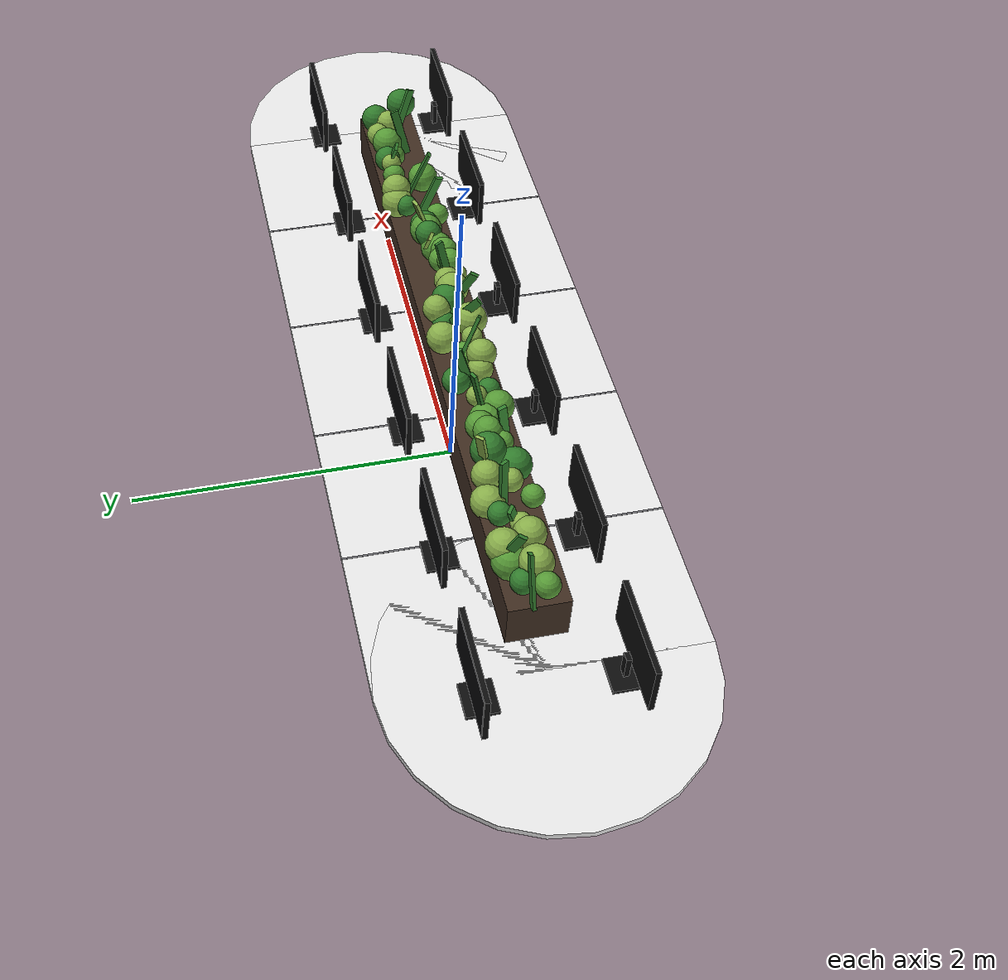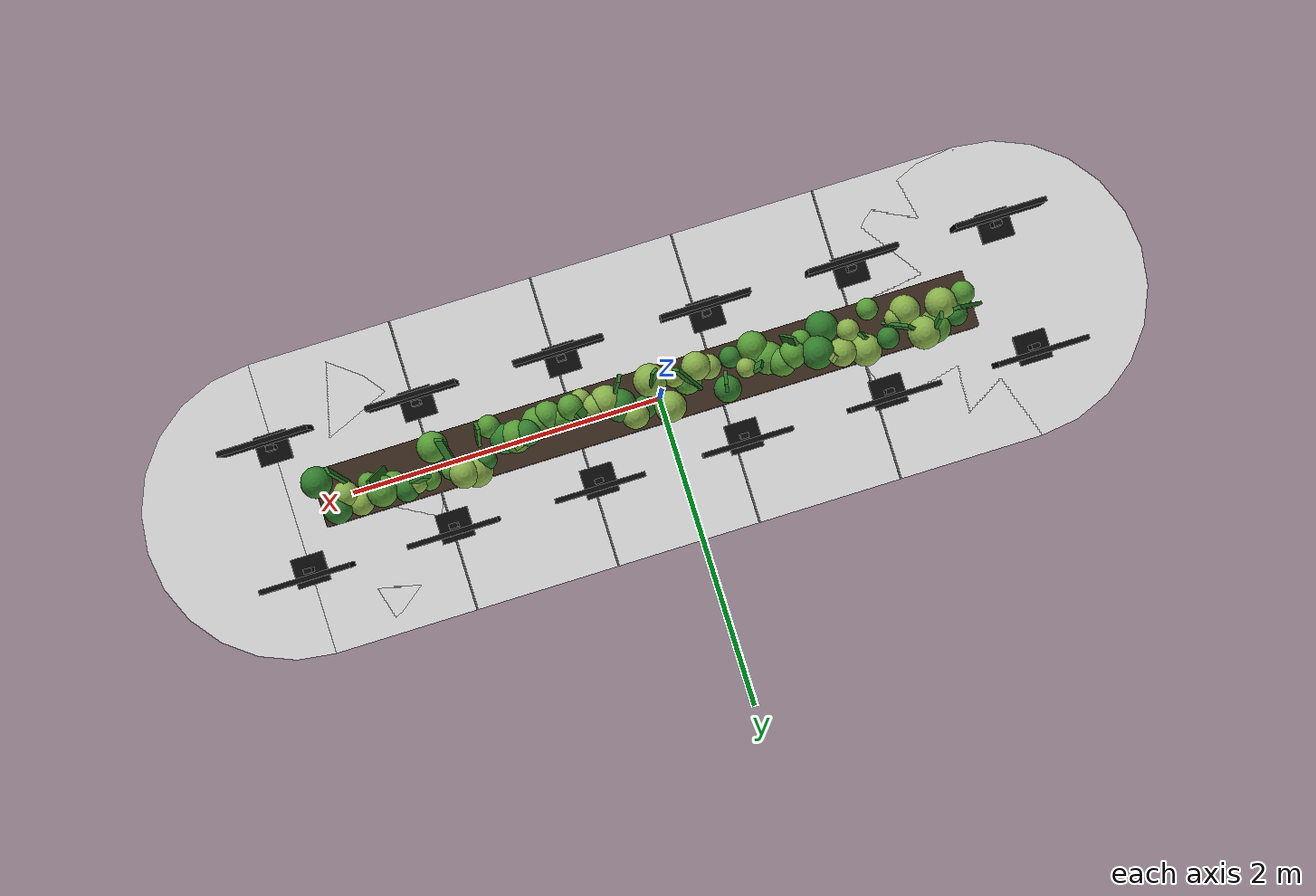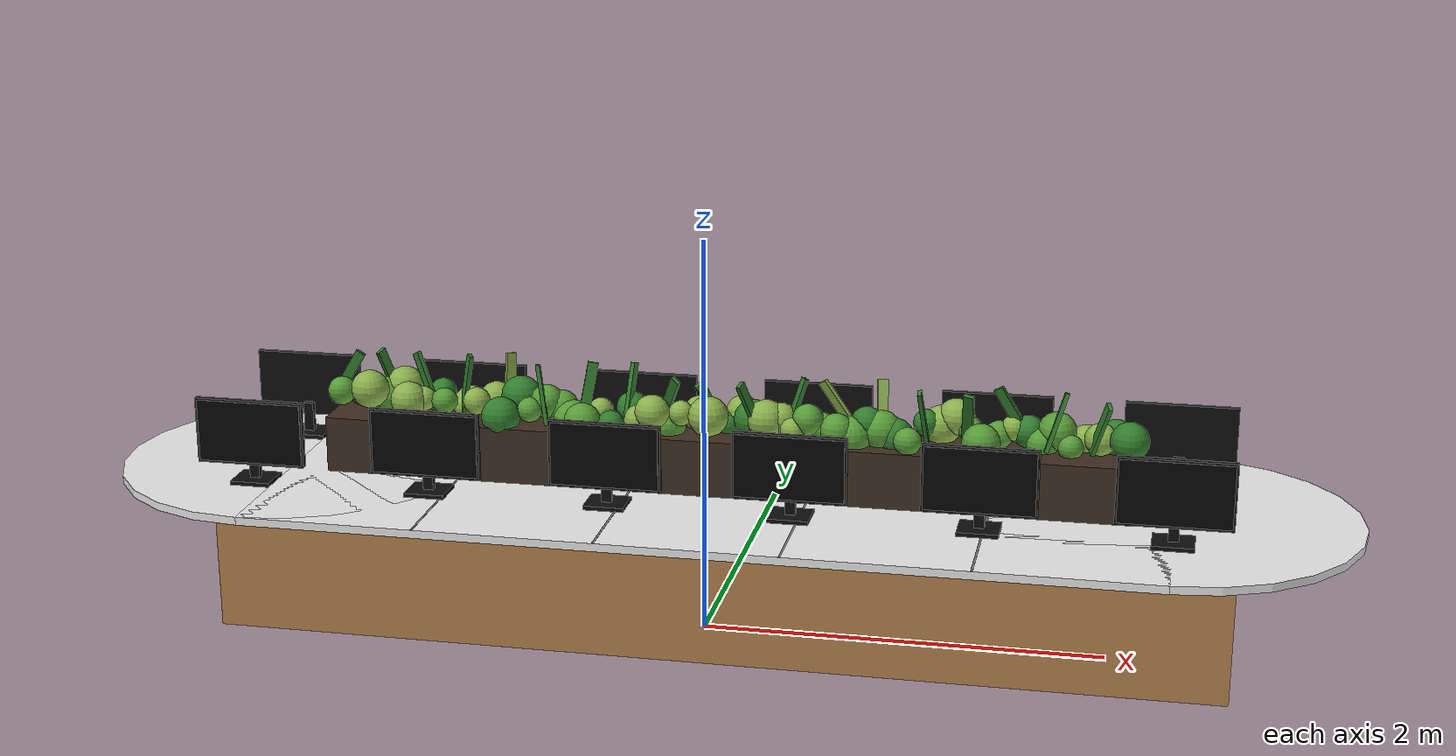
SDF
<sdf version="1.6">
 <world name="mahadev_lab">
  <include><uri>model://sun</uri></include>
  <model name="conference_table">
   <static>true</static>
   <pose>0.1000 0.0000 0.0000 0.0000 0.0000 0.0000</pose>
   <link name="link">
    <visual name="v1">
     <pose>0.0000 0.0000 0.7400 0.0000 0.0000 0.0000</pose>
     <geometry><box><size>4.4 1.8 0.04</size></box></geometry>
     <material>
      <ambient>0.92 0.92 0.92 1</ambient>
      <diffuse>0.92 0.92 0.92 1</diffuse>
      <specular>0.1 0.1 0.1 1</specular>
     </material>
    </visual>
    <collision name="c1">
     <pose>0.0000 0.0000 0.7400 0.0000 0.0000 0.0000</pose>
     <geometry><box><size>4.4 1.8 0.04</size></box></geometry>
     <surface><friction><ode><mu>100</mu><mu2>100</mu2></ode></friction></surface>
    </collision>
    <visual name="v2">
     <pose>-2.2000 0.0000 0.7400 0.0000 0.0000 0.0000</pose>
     <geometry><cylinder><radius>0.9</radius><length>0.04</length></cylinder></geometry>
     <material>
      <ambient>0.92 0.92 0.92 1</ambient>
      <diffuse>0.92 0.92 0.92 1</diffuse>
      <specular>0.1 0.1 0.1 1</specular>
     </material>
    </visual>
    <collision name="c2">
     <pose>-2.2000 0.0000 0.7400 0.0000 0.0000 0.0000</pose>
     <geometry><cylinder><radius>0.9</radius><length>0.04</length></cylinder></geometry>
     <surface><friction><ode><mu>100</mu><mu2>100</mu2></ode></friction></surface>
    </collision>
    <visual name="v3">
     <pose>2.2000 0.0000 0.7400 0.0000 0.0000 0.0000</pose>
     <geometry><cylinder><radius>0.9</radius><length>0.04</length></cylinder></geometry>
     <material>
      <ambient>0.92 0.92 0.92 1</ambient>
      <diffuse>0.92 0.92 0.92 1</diffuse>
      <specular>0.1 0.1 0.1 1</specular>
     </material>
    </visual>
    <collision name="c3">
     <pose>2.2000 0.0000 0.7400 0.0000 0.0000 0.0000</pose>
     <geometry><cylinder><radius>0.9</radius><length>0.04</length></cylinder></geometry>
     <surface><friction><ode><mu>100</mu><mu2>100</mu2></ode></friction></surface>
    </collision>
    <visual name="v4">
     <pose>-1.3200 0.0000 0.7610 0.0000 0.0000 0.0000</pose>
     <geometry><box><size>0.01 1.8 0.002</size></box></geometry>
     <material>
      <ambient>0.45 0.45 0.47 1</ambient>
      <diffuse>0.45 0.45 0.47 1</diffuse>
      <specular>0.1 0.1 0.1 1</specular>
     </material>
    </visual>
    <visual name="v5">
     <pose>-0.4400 0.0000 0.7610 0.0000 0.0000 0.0000</pose>
     <geometry><box><size>0.01 1.8 0.002</size></box></geometry>
     <material>
      <ambient>0.45 0.45 0.47 1</ambient>
      <diffuse>0.45 0.45 0.47 1</diffuse>
      <specular>0.1 0.1 0.1 1</specular>
     </material>
    </visual>
    <visual name="v6">
     <pose>0.4400 0.0000 0.7610 0.0000 0.0000 0.0000</pose>
     <geometry><box><size>0.01 1.8 0.002</size></box></geometry>
     <material>
      <ambient>0.45 0.45 0.47 1</ambient>
      <diffuse>0.45 0.45 0.47 1</diffuse>
      <specular>0.1 0.1 0.1 1</specular>
     </material>
    </visual>
    <visual name="v7">
     <pose>1.3200 0.0000 0.7610 0.0000 0.0000 0.0000</pose>
     <geometry><box><size>0.01 1.8 0.002</size></box></geometry>
     <material>
      <ambient>0.45 0.45 0.47 1</ambient>
      <diffuse>0.45 0.45 0.47 1</diffuse>
      <specular>0.1 0.1 0.1 1</specular>
     </material>
    </visual>
    <visual name="v8">
     <pose>0.0000 0.0000 0.3600 0.0000 0.0000 0.0000</pose>
     <geometry><box><size>5 0.9 0.72</size></box></geometry>
     <material>
      <script>
       <uri>model://mahadev_lab_media/materials/scripts</uri>
       <uri>model://mahadev_lab_media/materials/textures</uri>
       <name>Mahadev/wood_light_4_1</name>
      </script>
     </material>
    </visual>
    <collision name="c8">
     <pose>0.0000 0.0000 0.3600 0.0000 0.0000 0.0000</pose>
     <geometry><box><size>5 0.9 0.72</size></box></geometry>
     <surface><friction><ode><mu>100</mu><mu2>100</mu2></ode></friction></surface>
    </collision>
    <visual name="v9">
     <pose>0.0000 0.0000 0.9000 0.0000 0.0000 0.0000</pose>
     <geometry><box><size>4 0.34 0.28</size></box></geometry>
     <material>
      <ambient>0.25 0.18 0.13 1</ambient>
      <diffuse>0.25 0.18 0.13 1</diffuse>
      <specular>0.1 0.1 0.1 1</specular>
     </material>
    </visual>
    <visual name="v10">
     <pose>-1.9500 -0.0424 1.1473 0.0000 0.0000 0.0000</pose>
     <geometry><sphere><radius>0.0711403</radius></sphere></geometry>
     <material>
      <ambient>0.35 0.62 0.22 1</ambient>
      <diffuse>0.35 0.62 0.22 1</diffuse>
      <specular>0.1 0.1 0.1 1</specular>
     </material>
    </visual>
    <visual name="v11">
     <pose>-1.9500 0.0422 1.2000 0.5493 -0.0377 1.5746</pose>
     <geometry><box><size>0.02 0.05 0.3</size></box></geometry>
     <material>
      <ambient>0.2 0.5 0.18 1</ambient>
      <diffuse>0.2 0.5 0.18 1</diffuse>
      <specular>0.1 0.1 0.1 1</specular>
     </material>
    </visual>
    <visual name="v12">
     <pose>-1.8800 0.0641 1.1116 0.0000 0.0000 0.0000</pose>
     <geometry><sphere><radius>0.0700645</radius></sphere></geometry>
     <material>
      <ambient>0.2 0.5 0.18 1</ambient>
      <diffuse>0.2 0.5 0.18 1</diffuse>
      <specular>0.1 0.1 0.1 1</specular>
     </material>
    </visual>
    <visual name="v13">
     <pose>-1.8100 -0.0216 1.1571 0.0000 0.0000 0.0000</pose>
     <geometry><sphere><radius>0.095572</radius></sphere></geometry>
     <material>
      <ambient>0.55 0.7 0.3 1</ambient>
      <diffuse>0.55 0.7 0.3 1</diffuse>
      <specular>0.1 0.1 0.1 1</specular>
     </material>
    </visual>
    <visual name="v14">
     <pose>-1.7400 0.0978 1.1001 0.0000 0.0000 0.0000</pose>
     <geometry><sphere><radius>0.0992164</radius></sphere></geometry>
     <material>
      <ambient>0.35 0.62 0.22 1</ambient>
      <diffuse>0.35 0.62 0.22 1</diffuse>
      <specular>0.1 0.1 0.1 1</specular>
     </material>
    </visual>
    <visual name="v15">
     <pose>-1.7400 0.0972 1.2000 -0.3805 0.0727 2.7069</pose>
     <geometry><box><size>0.02 0.05 0.3</size></box></geometry>
     <material>
      <ambient>0.2 0.5 0.18 1</ambient>
      <diffuse>0.2 0.5 0.18 1</diffuse>
      <specular>0.1 0.1 0.1 1</specular>
     </material>
    </visual>
    <visual name="v16">
     <pose>-1.6700 0.1144 1.1431 0.0000 0.0000 0.0000</pose>
     <geometry><sphere><radius>0.0984296</radius></sphere></geometry>
     <material>
      <ambient>0.55 0.7 0.3 1</ambient>
      <diffuse>0.55 0.7 0.3 1</diffuse>
      <specular>0.1 0.1 0.1 1</specular>
     </material>
    </visual>
    <visual name="v17">
     <pose>-1.6000 -0.0442 1.1205 0.0000 0.0000 0.0000</pose>
     <geometry><sphere><radius>0.0917903</radius></sphere></geometry>
     <material>
      <ambient>0.55 0.7 0.3 1</ambient>
      <diffuse>0.55 0.7 0.3 1</diffuse>
      <specular>0.1 0.1 0.1 1</specular>
     </material>
    </visual>
    <visual name="v18">
     <pose>-1.5300 -0.0166 1.1224 0.0000 0.0000 0.0000</pose>
     <geometry><sphere><radius>0.0610274</radius></sphere></geometry>
     <material>
      <ambient>0.55 0.7 0.3 1</ambient>
      <diffuse>0.55 0.7 0.3 1</diffuse>
      <specular>0.1 0.1 0.1 1</specular>
     </material>
    </visual>
    <visual name="v19">
     <pose>-1.5300 0.0332 1.2000 -0.4724 -0.0689 0.8960</pose>
     <geometry><box><size>0.02 0.05 0.3</size></box></geometry>
     <material>
      <ambient>0.2 0.5 0.18 1</ambient>
      <diffuse>0.2 0.5 0.18 1</diffuse>
      <specular>0.1 0.1 0.1 1</specular>
     </material>
    </visual>
    <visual name="v20">
     <pose>-1.4600 0.0822 1.1360 0.0000 0.0000 0.0000</pose>
     <geometry><sphere><radius>0.066335</radius></sphere></geometry>
     <material>
      <ambient>0.2 0.5 0.18 1</ambient>
      <diffuse>0.2 0.5 0.18 1</diffuse>
      <specular>0.1 0.1 0.1 1</specular>
     </material>
    </visual>
    <visual name="v21">
     <pose>-1.3900 -0.1141 1.1499 0.0000 0.0000 0.0000</pose>
     <geometry><sphere><radius>0.0648629</radius></sphere></geometry>
     <material>
      <ambient>0.35 0.62 0.22 1</ambient>
      <diffuse>0.35 0.62 0.22 1</diffuse>
      <specular>0.1 0.1 0.1 1</specular>
     </material>
    </visual>
    <visual name="v22">
     <pose>-1.3200 0.1090 1.0646 0.0000 0.0000 0.0000</pose>
     <geometry><sphere><radius>0.0962881</radius></sphere></geometry>
     <material>
      <ambient>0.55 0.7 0.3 1</ambient>
      <diffuse>0.55 0.7 0.3 1</diffuse>
      <specular>0.1 0.1 0.1 1</specular>
     </material>
    </visual>
    <visual name="v23">
     <pose>-1.3200 0.0304 1.2000 0.0897 0.1335 0.5857</pose>
     <geometry><box><size>0.02 0.05 0.3</size></box></geometry>
     <material>
      <ambient>0.2 0.5 0.18 1</ambient>
      <diffuse>0.2 0.5 0.18 1</diffuse>
      <specular>0.1 0.1 0.1 1</specular>
     </material>
    </visual>
    <visual name="v24">
     <pose>-1.2500 -0.0311 1.1318 0.0000 0.0000 0.0000</pose>
     <geometry><sphere><radius>0.0683133</radius></sphere></geometry>
     <material>
      <ambient>0.55 0.7 0.3 1</ambient>
      <diffuse>0.55 0.7 0.3 1</diffuse>
      <specular>0.1 0.1 0.1 1</specular>
     </material>
    </visual>
    <visual name="v25">
     <pose>-1.1800 0.0830 1.1151 0.0000 0.0000 0.0000</pose>
     <geometry><sphere><radius>0.08581</radius></sphere></geometry>
     <material>
      <ambient>0.55 0.7 0.3 1</ambient>
      <diffuse>0.55 0.7 0.3 1</diffuse>
      <specular>0.1 0.1 0.1 1</specular>
     </material>
    </visual>
    <visual name="v26">
     <pose>-1.1100 -0.0920 1.0790 0.0000 0.0000 0.0000</pose>
     <geometry><sphere><radius>0.097917</radius></sphere></geometry>
     <material>
      <ambient>0.2 0.5 0.18 1</ambient>
      <diffuse>0.2 0.5 0.18 1</diffuse>
      <specular>0.1 0.1 0.1 1</specular>
     </material>
    </visual>
    <visual name="v27">
     <pose>-1.1100 0.0890 1.2000 0.1177 0.1186 2.3134</pose>
     <geometry><box><size>0.02 0.05 0.3</size></box></geometry>
     <material>
      <ambient>0.55 0.7 0.3 1</ambient>
      <diffuse>0.55 0.7 0.3 1</diffuse>
      <specular>0.1 0.1 0.1 1</specular>
     </material>
    </visual>
    <visual name="v28">
     <pose>-1.0400 0.0425 1.1513 0.0000 0.0000 0.0000</pose>
     <geometry><sphere><radius>0.0999792</radius></sphere></geometry>
     <material>
      <ambient>0.2 0.5 0.18 1</ambient>
      <diffuse>0.2 0.5 0.18 1</diffuse>
      <specular>0.1 0.1 0.1 1</specular>
     </material>
    </visual>
    <visual name="v29">
     <pose>-0.9700 -0.0582 1.1129 0.0000 0.0000 0.0000</pose>
     <geometry><sphere><radius>0.0621546</radius></sphere></geometry>
     <material>
      <ambient>0.35 0.62 0.22 1</ambient>
      <diffuse>0.35 0.62 0.22 1</diffuse>
      <specular>0.1 0.1 0.1 1</specular>
     </material>
    </visual>
    <visual name="v30">
     <pose>-0.9000 0.0097 1.1415 0.0000 0.0000 0.0000</pose>
     <geometry><sphere><radius>0.0832353</radius></sphere></geometry>
     <material>
      <ambient>0.35 0.62 0.22 1</ambient>
      <diffuse>0.35 0.62 0.22 1</diffuse>
      <specular>0.1 0.1 0.1 1</specular>
     </material>
    </visual>
    <visual name="v31">
     <pose>-0.9000 -0.0755 1.2000 -0.1998 -0.1410 0.2129</pose>
     <geometry><box><size>0.02 0.05 0.3</size></box></geometry>
     <material>
      <ambient>0.2 0.5 0.18 1</ambient>
      <diffuse>0.2 0.5 0.18 1</diffuse>
      <specular>0.1 0.1 0.1 1</specular>
     </material>
    </visual>
    <visual name="v32">
     <pose>-0.8300 0.0341 1.1092 0.0000 0.0000 0.0000</pose>
     <geometry><sphere><radius>0.0844714</radius></sphere></geometry>
     <material>
      <ambient>0.35 0.62 0.22 1</ambient>
      <diffuse>0.35 0.62 0.22 1</diffuse>
      <specular>0.1 0.1 0.1 1</specular>
     </material>
    </visual>
    <visual name="v33">
     <pose>-0.7600 -0.0155 1.0614 0.0000 0.0000 0.0000</pose>
     <geometry><sphere><radius>0.0989244</radius></sphere></geometry>
     <material>
      <ambient>0.35 0.62 0.22 1</ambient>
      <diffuse>0.35 0.62 0.22 1</diffuse>
      <specular>0.1 0.1 0.1 1</specular>
     </material>
    </visual>
    <visual name="v34">
     <pose>-0.6900 -0.1051 1.0849 0.0000 0.0000 0.0000</pose>
     <geometry><sphere><radius>0.0920753</radius></sphere></geometry>
     <material>
      <ambient>0.35 0.62 0.22 1</ambient>
      <diffuse>0.35 0.62 0.22 1</diffuse>
      <specular>0.1 0.1 0.1 1</specular>
     </material>
    </visual>
    <visual name="v35">
     <pose>-0.6900 0.0135 1.2000 0.2085 0.1535 1.8987</pose>
     <geometry><box><size>0.02 0.05 0.3</size></box></geometry>
     <material>
      <ambient>0.2 0.5 0.18 1</ambient>
      <diffuse>0.2 0.5 0.18 1</diffuse>
      <specular>0.1 0.1 0.1 1</specular>
     </material>
    </visual>
    <visual name="v36">
     <pose>-0.6200 0.0035 1.1159 0.0000 0.0000 0.0000</pose>
     <geometry><sphere><radius>0.0605026</radius></sphere></geometry>
     <material>
      <ambient>0.55 0.7 0.3 1</ambient>
      <diffuse>0.55 0.7 0.3 1</diffuse>
      <specular>0.1 0.1 0.1 1</specular>
     </material>
    </visual>
    <visual name="v37">
     <pose>-0.5500 -0.0854 1.0759 0.0000 0.0000 0.0000</pose>
     <geometry><sphere><radius>0.0660806</radius></sphere></geometry>
     <material>
      <ambient>0.2 0.5 0.18 1</ambient>
      <diffuse>0.2 0.5 0.18 1</diffuse>
      <specular>0.1 0.1 0.1 1</specular>
     </material>
    </visual>
    <visual name="v38">
     <pose>-0.4800 0.0885 1.1088 0.0000 0.0000 0.0000</pose>
     <geometry><sphere><radius>0.0812565</radius></sphere></geometry>
     <material>
      <ambient>0.2 0.5 0.18 1</ambient>
      <diffuse>0.2 0.5 0.18 1</diffuse>
      <specular>0.1 0.1 0.1 1</specular>
     </material>
    </visual>
    <visual name="v39">
     <pose>-0.4800 0.0465 1.2000 0.2987 -0.0299 2.9459</pose>
     <geometry><box><size>0.02 0.05 0.3</size></box></geometry>
     <material>
      <ambient>0.2 0.5 0.18 1</ambient>
      <diffuse>0.2 0.5 0.18 1</diffuse>
      <specular>0.1 0.1 0.1 1</specular>
     </material>
    </visual>
    <visual name="v40">
     <pose>-0.4100 -0.0679 1.0989 0.0000 0.0000 0.0000</pose>
     <geometry><sphere><radius>0.0763876</radius></sphere></geometry>
     <material>
      <ambient>0.55 0.7 0.3 1</ambient>
      <diffuse>0.55 0.7 0.3 1</diffuse>
      <specular>0.1 0.1 0.1 1</specular>
     </material>
    </visual>
    <visual name="v41">
     <pose>-0.3400 -0.0905 1.1498 0.0000 0.0000 0.0000</pose>
     <geometry><sphere><radius>0.0869224</radius></sphere></geometry>
     <material>
      <ambient>0.55 0.7 0.3 1</ambient>
      <diffuse>0.55 0.7 0.3 1</diffuse>
      <specular>0.1 0.1 0.1 1</specular>
     </material>
    </visual>
    <visual name="v42">
     <pose>-0.2700 -0.0320 1.0731 0.0000 0.0000 0.0000</pose>
     <geometry><sphere><radius>0.0874372</radius></sphere></geometry>
     <material>
      <ambient>0.35 0.62 0.22 1</ambient>
      <diffuse>0.35 0.62 0.22 1</diffuse>
      <specular>0.1 0.1 0.1 1</specular>
     </material>
    </visual>
    <visual name="v43">
     <pose>-0.2700 -0.0318 1.2000 0.5752 -0.2141 0.9577</pose>
     <geometry><box><size>0.02 0.05 0.3</size></box></geometry>
     <material>
      <ambient>0.2 0.5 0.18 1</ambient>
      <diffuse>0.2 0.5 0.18 1</diffuse>
      <specular>0.1 0.1 0.1 1</specular>
     </material>
    </visual>
    <visual name="v44">
     <pose>-0.2000 -0.0677 1.1470 0.0000 0.0000 0.0000</pose>
     <geometry><sphere><radius>0.0619852</radius></sphere></geometry>
     <material>
      <ambient>0.55 0.7 0.3 1</ambient>
      <diffuse>0.55 0.7 0.3 1</diffuse>
      <specular>0.1 0.1 0.1 1</specular>
     </material>
    </visual>
    <visual name="v45">
     <pose>-0.1300 0.0884 1.0973 0.0000 0.0000 0.0000</pose>
     <geometry><sphere><radius>0.0946588</radius></sphere></geometry>
     <material>
      <ambient>0.55 0.7 0.3 1</ambient>
      <diffuse>0.55 0.7 0.3 1</diffuse>
      <specular>0.1 0.1 0.1 1</specular>
     </material>
    </visual>
    <visual name="v46">
     <pose>-0.0600 -0.0908 1.1468 0.0000 0.0000 0.0000</pose>
     <geometry><sphere><radius>0.0994778</radius></sphere></geometry>
     <material>
      <ambient>0.55 0.7 0.3 1</ambient>
      <diffuse>0.55 0.7 0.3 1</diffuse>
      <specular>0.1 0.1 0.1 1</specular>
     </material>
    </visual>
    <visual name="v47">
     <pose>-0.0600 -0.0484 1.2000 -0.5933 -0.2392 2.3780</pose>
     <geometry><box><size>0.02 0.05 0.3</size></box></geometry>
     <material>
      <ambient>0.2 0.5 0.18 1</ambient>
      <diffuse>0.2 0.5 0.18 1</diffuse>
      <specular>0.1 0.1 0.1 1</specular>
     </material>
    </visual>
    <visual name="v48">
     <pose>0.0100 0.0468 1.0720 0.0000 0.0000 0.0000</pose>
     <geometry><sphere><radius>0.0706861</radius></sphere></geometry>
     <material>
      <ambient>0.2 0.5 0.18 1</ambient>
      <diffuse>0.2 0.5 0.18 1</diffuse>
      <specular>0.1 0.1 0.1 1</specular>
     </material>
    </visual>
    <visual name="v49">
     <pose>0.0800 0.0777 1.1270 0.0000 0.0000 0.0000</pose>
     <geometry><sphere><radius>0.0823884</radius></sphere></geometry>
     <material>
      <ambient>0.55 0.7 0.3 1</ambient>
      <diffuse>0.55 0.7 0.3 1</diffuse>
      <specular>0.1 0.1 0.1 1</specular>
     </material>
    </visual>
    <visual name="v50">
     <pose>0.1500 -0.0054 1.1195 0.0000 0.0000 0.0000</pose>
     <geometry><sphere><radius>0.0977652</radius></sphere></geometry>
     <material>
      <ambient>0.2 0.5 0.18 1</ambient>
      <diffuse>0.2 0.5 0.18 1</diffuse>
      <specular>0.1 0.1 0.1 1</specular>
     </material>
    </visual>
    <visual name="v51">
     <pose>0.1500 -0.0984 1.2000 -0.4327 0.1314 2.7405</pose>
     <geometry><box><size>0.02 0.05 0.3</size></box></geometry>
     <material>
      <ambient>0.2 0.5 0.18 1</ambient>
      <diffuse>0.2 0.5 0.18 1</diffuse>
      <specular>0.1 0.1 0.1 1</specular>
     </material>
    </visual>
    <visual name="v52">
     <pose>0.2200 -0.0483 1.1355 0.0000 0.0000 0.0000</pose>
     <geometry><sphere><radius>0.0979373</radius></sphere></geometry>
     <material>
      <ambient>0.55 0.7 0.3 1</ambient>
      <diffuse>0.55 0.7 0.3 1</diffuse>
      <specular>0.1 0.1 0.1 1</specular>
     </material>
    </visual>
    <visual name="v53">
     <pose>0.2900 -0.0337 1.1379 0.0000 0.0000 0.0000</pose>
     <geometry><sphere><radius>0.0803026</radius></sphere></geometry>
     <material>
      <ambient>0.55 0.7 0.3 1</ambient>
      <diffuse>0.55 0.7 0.3 1</diffuse>
      <specular>0.1 0.1 0.1 1</specular>
     </material>
    </visual>
    <visual name="v54">
     <pose>0.3600 -0.1070 1.1074 0.0000 0.0000 0.0000</pose>
     <geometry><sphere><radius>0.0614865</radius></sphere></geometry>
     <material>
      <ambient>0.55 0.7 0.3 1</ambient>
      <diffuse>0.55 0.7 0.3 1</diffuse>
      <specular>0.1 0.1 0.1 1</specular>
     </material>
    </visual>
    <visual name="v55">
     <pose>0.3600 -0.0307 1.2000 -0.0489 0.3531 0.4964</pose>
     <geometry><box><size>0.02 0.05 0.3</size></box></geometry>
     <material>
      <ambient>0.2 0.5 0.18 1</ambient>
      <diffuse>0.2 0.5 0.18 1</diffuse>
      <specular>0.1 0.1 0.1 1</specular>
     </material>
    </visual>
    <visual name="v56">
     <pose>0.4300 -0.0784 1.1584 0.0000 0.0000 0.0000</pose>
     <geometry><sphere><radius>0.0763831</radius></sphere></geometry>
     <material>
      <ambient>0.35 0.62 0.22 1</ambient>
      <diffuse>0.35 0.62 0.22 1</diffuse>
      <specular>0.1 0.1 0.1 1</specular>
     </material>
    </visual>
    <visual name="v57">
     <pose>0.5000 -0.0412 1.1088 0.0000 0.0000 0.0000</pose>
     <geometry><sphere><radius>0.074269</radius></sphere></geometry>
     <material>
      <ambient>0.35 0.62 0.22 1</ambient>
      <diffuse>0.35 0.62 0.22 1</diffuse>
      <specular>0.1 0.1 0.1 1</specular>
     </material>
    </visual>
    <visual name="v58">
     <pose>0.5700 -0.0757 1.1120 0.0000 0.0000 0.0000</pose>
     <geometry><sphere><radius>0.0837186</radius></sphere></geometry>
     <material>
      <ambient>0.35 0.62 0.22 1</ambient>
      <diffuse>0.35 0.62 0.22 1</diffuse>
      <specular>0.1 0.1 0.1 1</specular>
     </material>
    </visual>
    <visual name="v59">
     <pose>0.5700 0.0219 1.2000 -0.5596 -0.2647 1.1166</pose>
     <geometry><box><size>0.02 0.05 0.3</size></box></geometry>
     <material>
      <ambient>0.55 0.7 0.3 1</ambient>
      <diffuse>0.55 0.7 0.3 1</diffuse>
      <specular>0.1 0.1 0.1 1</specular>
     </material>
    </visual>
    <visual name="v60">
     <pose>0.6400 -0.0490 1.0779 0.0000 0.0000 0.0000</pose>
     <geometry><sphere><radius>0.0980614</radius></sphere></geometry>
     <material>
      <ambient>0.35 0.62 0.22 1</ambient>
      <diffuse>0.35 0.62 0.22 1</diffuse>
      <specular>0.1 0.1 0.1 1</specular>
     </material>
    </visual>
    <visual name="v61">
     <pose>0.7100 -0.0096 1.1388 0.0000 0.0000 0.0000</pose>
     <geometry><sphere><radius>0.0799067</radius></sphere></geometry>
     <material>
      <ambient>0.2 0.5 0.18 1</ambient>
      <diffuse>0.2 0.5 0.18 1</diffuse>
      <specular>0.1 0.1 0.1 1</specular>
     </material>
    </visual>
    <visual name="v62">
     <pose>0.7800 -0.0106 1.1066 0.0000 0.0000 0.0000</pose>
     <geometry><sphere><radius>0.0983251</radius></sphere></geometry>
     <material>
      <ambient>0.35 0.62 0.22 1</ambient>
      <diffuse>0.35 0.62 0.22 1</diffuse>
      <specular>0.1 0.1 0.1 1</specular>
     </material>
    </visual>
    <visual name="v63">
     <pose>0.7800 0.0145 1.2000 0.0649 0.3214 1.9147</pose>
     <geometry><box><size>0.02 0.05 0.3</size></box></geometry>
     <material>
      <ambient>0.55 0.7 0.3 1</ambient>
      <diffuse>0.55 0.7 0.3 1</diffuse>
      <specular>0.1 0.1 0.1 1</specular>
     </material>
    </visual>
    <visual name="v64">
     <pose>0.8500 -0.0176 1.0803 0.0000 0.0000 0.0000</pose>
     <geometry><sphere><radius>0.0899158</radius></sphere></geometry>
     <material>
      <ambient>0.2 0.5 0.18 1</ambient>
      <diffuse>0.2 0.5 0.18 1</diffuse>
      <specular>0.1 0.1 0.1 1</specular>
     </material>
    </visual>
    <visual name="v65">
     <pose>0.9200 -0.1136 1.0904 0.0000 0.0000 0.0000</pose>
     <geometry><sphere><radius>0.0687239</radius></sphere></geometry>
     <material>
      <ambient>0.35 0.62 0.22 1</ambient>
      <diffuse>0.35 0.62 0.22 1</diffuse>
      <specular>0.1 0.1 0.1 1</specular>
     </material>
    </visual>
    <visual name="v66">
     <pose>0.9900 0.0681 1.1321 0.0000 0.0000 0.0000</pose>
     <geometry><sphere><radius>0.0655877</radius></sphere></geometry>
     <material>
      <ambient>0.2 0.5 0.18 1</ambient>
      <diffuse>0.2 0.5 0.18 1</diffuse>
      <specular>0.1 0.1 0.1 1</specular>
     </material>
    </visual>
    <visual name="v67">
     <pose>0.9900 -0.0840 1.2000 0.2987 -0.1342 0.0582</pose>
     <geometry><box><size>0.02 0.05 0.3</size></box></geometry>
     <material>
      <ambient>0.2 0.5 0.18 1</ambient>
      <diffuse>0.2 0.5 0.18 1</diffuse>
      <specular>0.1 0.1 0.1 1</specular>
     </material>
    </visual>
    <visual name="v68">
     <pose>1.0600 0.1127 1.1105 0.0000 0.0000 0.0000</pose>
     <geometry><sphere><radius>0.0986292</radius></sphere></geometry>
     <material>
      <ambient>0.55 0.7 0.3 1</ambient>
      <diffuse>0.55 0.7 0.3 1</diffuse>
      <specular>0.1 0.1 0.1 1</specular>
     </material>
    </visual>
    <visual name="v69">
     <pose>1.1300 0.1055 1.1590 0.0000 0.0000 0.0000</pose>
     <geometry><sphere><radius>0.0908402</radius></sphere></geometry>
     <material>
      <ambient>0.55 0.7 0.3 1</ambient>
      <diffuse>0.55 0.7 0.3 1</diffuse>
      <specular>0.1 0.1 0.1 1</specular>
     </material>
    </visual>
    <visual name="v70">
     <pose>1.2000 0.0630 1.1175 0.0000 0.0000 0.0000</pose>
     <geometry><sphere><radius>0.0607285</radius></sphere></geometry>
     <material>
      <ambient>0.35 0.62 0.22 1</ambient>
      <diffuse>0.35 0.62 0.22 1</diffuse>
      <specular>0.1 0.1 0.1 1</specular>
     </material>
    </visual>
    <visual name="v71">
     <pose>1.2000 -0.0569 1.2000 0.1615 -0.3922 1.2945</pose>
     <geometry><box><size>0.02 0.05 0.3</size></box></geometry>
     <material>
      <ambient>0.2 0.5 0.18 1</ambient>
      <diffuse>0.2 0.5 0.18 1</diffuse>
      <specular>0.1 0.1 0.1 1</specular>
     </material>
    </visual>
    <visual name="v72">
     <pose>1.2700 -0.0954 1.1011 0.0000 0.0000 0.0000</pose>
     <geometry><sphere><radius>0.0932532</radius></sphere></geometry>
     <material>
      <ambient>0.35 0.62 0.22 1</ambient>
      <diffuse>0.35 0.62 0.22 1</diffuse>
      <specular>0.1 0.1 0.1 1</specular>
     </material>
    </visual>
    <visual name="v73">
     <pose>1.3400 0.0772 1.0904 0.0000 0.0000 0.0000</pose>
     <geometry><sphere><radius>0.0693098</radius></sphere></geometry>
     <material>
      <ambient>0.35 0.62 0.22 1</ambient>
      <diffuse>0.35 0.62 0.22 1</diffuse>
      <specular>0.1 0.1 0.1 1</specular>
     </material>
    </visual>
    <visual name="v74">
     <pose>1.4100 0.0807 1.1282 0.0000 0.0000 0.0000</pose>
     <geometry><sphere><radius>0.0617444</radius></sphere></geometry>
     <material>
      <ambient>0.55 0.7 0.3 1</ambient>
      <diffuse>0.55 0.7 0.3 1</diffuse>
      <specular>0.1 0.1 0.1 1</specular>
     </material>
    </visual>
    <visual name="v75">
     <pose>1.4100 0.0701 1.2000 -0.5205 -0.1923 1.3257</pose>
     <geometry><box><size>0.02 0.05 0.3</size></box></geometry>
     <material>
      <ambient>0.2 0.5 0.18 1</ambient>
      <diffuse>0.2 0.5 0.18 1</diffuse>
      <specular>0.1 0.1 0.1 1</specular>
     </material>
    </visual>
    <visual name="v76">
     <pose>1.4800 0.0916 1.1125 0.0000 0.0000 0.0000</pose>
     <geometry><sphere><radius>0.0795229</radius></sphere></geometry>
     <material>
      <ambient>0.2 0.5 0.18 1</ambient>
      <diffuse>0.2 0.5 0.18 1</diffuse>
      <specular>0.1 0.1 0.1 1</specular>
     </material>
    </visual>
    <visual name="v77">
     <pose>1.5500 0.0430 1.0686 0.0000 0.0000 0.0000</pose>
     <geometry><sphere><radius>0.0784775</radius></sphere></geometry>
     <material>
      <ambient>0.35 0.62 0.22 1</ambient>
      <diffuse>0.35 0.62 0.22 1</diffuse>
      <specular>0.1 0.1 0.1 1</specular>
     </material>
    </visual>
    <visual name="v78">
     <pose>1.6200 0.0654 1.1303 0.0000 0.0000 0.0000</pose>
     <geometry><sphere><radius>0.0945066</radius></sphere></geometry>
     <material>
      <ambient>0.35 0.62 0.22 1</ambient>
      <diffuse>0.35 0.62 0.22 1</diffuse>
      <specular>0.1 0.1 0.1 1</specular>
     </material>
    </visual>
    <visual name="v79">
     <pose>1.6200 -0.0201 1.2000 -0.2073 0.3141 0.0618</pose>
     <geometry><box><size>0.02 0.05 0.3</size></box></geometry>
     <material>
      <ambient>0.2 0.5 0.18 1</ambient>
      <diffuse>0.2 0.5 0.18 1</diffuse>
      <specular>0.1 0.1 0.1 1</specular>
     </material>
    </visual>
    <visual name="v80">
     <pose>1.6900 -0.0078 1.0750 0.0000 0.0000 0.0000</pose>
     <geometry><sphere><radius>0.0624015</radius></sphere></geometry>
     <material>
      <ambient>0.35 0.62 0.22 1</ambient>
      <diffuse>0.35 0.62 0.22 1</diffuse>
      <specular>0.1 0.1 0.1 1</specular>
     </material>
    </visual>
    <visual name="v81">
     <pose>1.7600 0.0948 1.0866 0.0000 0.0000 0.0000</pose>
     <geometry><sphere><radius>0.07535</radius></sphere></geometry>
     <material>
      <ambient>0.55 0.7 0.3 1</ambient>
      <diffuse>0.55 0.7 0.3 1</diffuse>
      <specular>0.1 0.1 0.1 1</specular>
     </material>
    </visual>
    <visual name="v82">
     <pose>1.8300 0.0201 1.1181 0.0000 0.0000 0.0000</pose>
     <geometry><sphere><radius>0.0791047</radius></sphere></geometry>
     <material>
      <ambient>0.55 0.7 0.3 1</ambient>
      <diffuse>0.55 0.7 0.3 1</diffuse>
      <specular>0.1 0.1 0.1 1</specular>
     </material>
    </visual>
    <visual name="v83">
     <pose>1.8300 -0.0820 1.2000 0.4530 0.1257 0.3778</pose>
     <geometry><box><size>0.02 0.05 0.3</size></box></geometry>
     <material>
      <ambient>0.2 0.5 0.18 1</ambient>
      <diffuse>0.2 0.5 0.18 1</diffuse>
      <specular>0.1 0.1 0.1 1</specular>
     </material>
    </visual>
    <visual name="v84">
     <pose>1.9000 0.0879 1.1094 0.0000 0.0000 0.0000</pose>
     <geometry><sphere><radius>0.0891416</radius></sphere></geometry>
     <material>
      <ambient>0.2 0.5 0.18 1</ambient>
      <diffuse>0.2 0.5 0.18 1</diffuse>
      <specular>0.1 0.1 0.1 1</specular>
     </material>
    </visual>
    <visual name="v85">
     <pose>1.9700 -0.0955 1.1540 0.0000 0.0000 0.0000</pose>
     <geometry><sphere><radius>0.0941666</radius></sphere></geometry>
     <material>
      <ambient>0.2 0.5 0.18 1</ambient>
      <diffuse>0.2 0.5 0.18 1</diffuse>
      <specular>0.1 0.1 0.1 1</specular>
     </material>
    </visual>
    <visual name="v86">
     <pose>-2.3000 -0.3800 0.7700 0.0000 0.0000 -1.5708</pose>
     <geometry><box><size>0.18 0.2 0.02</size></box></geometry>
     <material>
      <ambient>0.05 0.05 0.05 1</ambient>
      <diffuse>0.05 0.05 0.05 1</diffuse>
      <specular>0.1 0.1 0.1 1</specular>
     </material>
    </visual>
    <visual name="v87">
     <pose>-2.3000 -0.3800 0.8500 0.0000 0.0000 -1.5708</pose>
     <geometry><box><size>0.03 0.05 0.16</size></box></geometry>
     <material>
      <ambient>0.05 0.05 0.05 1</ambient>
      <diffuse>0.05 0.05 0.05 1</diffuse>
      <specular>0.1 0.1 0.1 1</specular>
     </material>
    </visual>
    <visual name="v88">
     <pose>-2.3000 -0.4200 1.0250 0.0000 0.0000 -1.5708</pose>
     <geometry><box><size>0.03 0.55 0.33</size></box></geometry>
     <material>
      <ambient>0.05 0.05 0.05 1</ambient>
      <diffuse>0.05 0.05 0.05 1</diffuse>
      <specular>0.1 0.1 0.1 1</specular>
     </material>
    </visual>
    <visual name="v89">
     <pose>-2.3000 -0.4360 1.0250 0.0000 0.0000 -1.5708</pose>
     <geometry><box><size>0.002 0.53 0.31</size></box></geometry>
     <material>
      <ambient>0.02 0.02 0.03 1</ambient>
      <diffuse>0.02 0.02 0.03 1</diffuse>
      <specular>0.1 0.1 0.1 1</specular>
     </material>
    </visual>
    <visual name="v90">
     <pose>-1.4000 -0.3800 0.7700 0.0000 0.0000 -1.5708</pose>
     <geometry><box><size>0.18 0.2 0.02</size></box></geometry>
     <material>
      <ambient>0.05 0.05 0.05 1</ambient>
      <diffuse>0.05 0.05 0.05 1</diffuse>
      <specular>0.1 0.1 0.1 1</specular>
     </material>
    </visual>
    <visual name="v91">
     <pose>-1.4000 -0.3800 0.8500 0.0000 0.0000 -1.5708</pose>
     <geometry><box><size>0.03 0.05 0.16</size></box></geometry>
     <material>
      <ambient>0.05 0.05 0.05 1</ambient>
      <diffuse>0.05 0.05 0.05 1</diffuse>
      <specular>0.1 0.1 0.1 1</specular>
     </material>
    </visual>
    <visual name="v92">
     <pose>-1.4000 -0.4200 1.0250 0.0000 0.0000 -1.5708</pose>
     <geometry><box><size>0.03 0.55 0.33</size></box></geometry>
     <material>
      <ambient>0.05 0.05 0.05 1</ambient>
      <diffuse>0.05 0.05 0.05 1</diffuse>
      <specular>0.1 0.1 0.1 1</specular>
     </material>
    </visual>
    <visual name="v93">
     <pose>-1.4000 -0.4360 1.0250 0.0000 0.0000 -1.5708</pose>
     <geometry><box><size>0.002 0.53 0.31</size></box></geometry>
     <material>
      <ambient>0.02 0.02 0.03 1</ambient>
      <diffuse>0.02 0.02 0.03 1</diffuse>
      <specular>0.1 0.1 0.1 1</specular>
     </material>
    </visual>
    <visual name="v94">
     <pose>-0.5000 -0.3800 0.7700 0.0000 0.0000 -1.5708</pose>
     <geometry><box><size>0.18 0.2 0.02</size></box></geometry>
     <material>
      <ambient>0.05 0.05 0.05 1</ambient>
      <diffuse>0.05 0.05 0.05 1</diffuse>
      <specular>0.1 0.1 0.1 1</specular>
     </material>
    </visual>
    <visual name="v95">
     <pose>-0.5000 -0.3800 0.8500 0.0000 0.0000 -1.5708</pose>
     <geometry><box><size>0.03 0.05 0.16</size></box></geometry>
     <material>
      <ambient>0.05 0.05 0.05 1</ambient>
      <diffuse>0.05 0.05 0.05 1</diffuse>
      <specular>0.1 0.1 0.1 1</specular>
     </material>
    </visual>
    <visual name="v96">
     <pose>-0.5000 -0.4200 1.0250 0.0000 0.0000 -1.5708</pose>
     <geometry><box><size>0.03 0.55 0.33</size></box></geometry>
     <material>
      <ambient>0.05 0.05 0.05 1</ambient>
      <diffuse>0.05 0.05 0.05 1</diffuse>
      <specular>0.1 0.1 0.1 1</specular>
     </material>
    </visual>
    <visual name="v97">
     <pose>-0.5000 -0.4360 1.0250 0.0000 0.0000 -1.5708</pose>
     <geometry><box><size>0.002 0.53 0.31</size></box></geometry>
     <material>
      <ambient>0.02 0.02 0.03 1</ambient>
      <diffuse>0.02 0.02 0.03 1</diffuse>
      <specular>0.1 0.1 0.1 1</specular>
     </material>
    </visual>
    <visual name="v98">
     <pose>0.4000 -0.3800 0.7700 0.0000 0.0000 -1.5708</pose>
     <geometry><box><size>0.18 0.2 0.02</size></box></geometry>
     <material>
      <ambient>0.05 0.05 0.05 1</ambient>
      <diffuse>0.05 0.05 0.05 1</diffuse>
      <specular>0.1 0.1 0.1 1</specular>
     </material>
    </visual>
    <visual name="v99">
     <pose>0.4000 -0.3800 0.8500 0.0000 0.0000 -1.5708</pose>
     <geometry><box><size>0.03 0.05 0.16</size></box></geometry>
     <material>
      <ambient>0.05 0.05 0.05 1</ambient>
      <diffuse>0.05 0.05 0.05 1</diffuse>
      <specular>0.1 0.1 0.1 1</specular>
     </material>
    </visual>
    <visual name="v100">
     <pose>0.4000 -0.4200 1.0250 0.0000 0.0000 -1.5708</pose>
     <geometry><box><size>0.03 0.55 0.33</size></box></geometry>
     <material>
      <ambient>0.05 0.05 0.05 1</ambient>
      <diffuse>0.05 0.05 0.05 1</diffuse>
      <specular>0.1 0.1 0.1 1</specular>
     </material>
    </visual>
    <visual name="v101">
     <pose>0.4000 -0.4360 1.0250 0.0000 0.0000 -1.5708</pose>
     <geometry><box><size>0.002 0.53 0.31</size></box></geometry>
     <material>
      <ambient>0.02 0.02 0.03 1</ambient>
      <diffuse>0.02 0.02 0.03 1</diffuse>
      <specular>0.1 0.1 0.1 1</specular>
     </material>
    </visual>
    <visual name="v102">
     <pose>1.3000 -0.3800 0.7700 0.0000 0.0000 -1.5708</pose>
     <geometry><box><size>0.18 0.2 0.02</size></box></geometry>
     <material>
      <ambient>0.05 0.05 0.05 1</ambient>
      <diffuse>0.05 0.05 0.05 1</diffuse>
      <specular>0.1 0.1 0.1 1</specular>
     </material>
    </visual>
    <visual name="v103">
     <pose>1.3000 -0.3800 0.8500 0.0000 0.0000 -1.5708</pose>
     <geometry><box><size>0.03 0.05 0.16</size></box></geometry>
     <material>
      <ambient>0.05 0.05 0.05 1</ambient>
      <diffuse>0.05 0.05 0.05 1</diffuse>
      <specular>0.1 0.1 0.1 1</specular>
     </material>
    </visual>
    <visual name="v104">
     <pose>1.3000 -0.4200 1.0250 0.0000 0.0000 -1.5708</pose>
     <geometry><box><size>0.03 0.55 0.33</size></box></geometry>
     <material>
      <ambient>0.05 0.05 0.05 1</ambient>
      <diffuse>0.05 0.05 0.05 1</diffuse>
      <specular>0.1 0.1 0.1 1</specular>
     </material>
    </visual>
    <visual name="v105">
     <pose>1.3000 -0.4360 1.0250 0.0000 0.0000 -1.5708</pose>
     <geometry><box><size>0.002 0.53 0.31</size></box></geometry>
     <material>
      <ambient>0.02 0.02 0.03 1</ambient>
      <diffuse>0.02 0.02 0.03 1</diffuse>
      <specular>0.1 0.1 0.1 1</specular>
     </material>
    </visual>
    <visual name="v106">
     <pose>2.2000 -0.3800 0.7700 0.0000 0.0000 -1.5708</pose>
     <geometry><box><size>0.18 0.2 0.02</size></box></geometry>
     <material>
      <ambient>0.05 0.05 0.05 1</ambient>
      <diffuse>0.05 0.05 0.05 1</diffuse>
      <specular>0.1 0.1 0.1 1</specular>
     </material>
    </visual>
    <visual name="v107">
     <pose>2.2000 -0.3800 0.8500 0.0000 0.0000 -1.5708</pose>
     <geometry><box><size>0.03 0.05 0.16</size></box></geometry>
     <material>
      <ambient>0.05 0.05 0.05 1</ambient>
      <diffuse>0.05 0.05 0.05 1</diffuse>
      <specular>0.1 0.1 0.1 1</specular>
     </material>
    </visual>
    <visual name="v108">
     <pose>2.2000 -0.4200 1.0250 0.0000 0.0000 -1.5708</pose>
     <geometry><box><size>0.03 0.55 0.33</size></box></geometry>
     <material>
      <ambient>0.05 0.05 0.05 1</ambient>
      <diffuse>0.05 0.05 0.05 1</diffuse>
      <specular>0.1 0.1 0.1 1</specular>
     </material>
    </visual>
    <visual name="v109">
     <pose>2.2000 -0.4360 1.0250 0.0000 0.0000 -1.5708</pose>
     <geometry><box><size>0.002 0.53 0.31</size></box></geometry>
     <material>
      <ambient>0.02 0.02 0.03 1</ambient>
      <diffuse>0.02 0.02 0.03 1</diffuse>
      <specular>0.1 0.1 0.1 1</specular>
     </material>
    </visual>
    <visual name="v110">
     <pose>-2.3000 0.3800 0.7700 0.0000 0.0000 1.5708</pose>
     <geometry><box><size>0.18 0.2 0.02</size></box></geometry>
     <material>
      <ambient>0.05 0.05 0.05 1</ambient>
      <diffuse>0.05 0.05 0.05 1</diffuse>
      <specular>0.1 0.1 0.1 1</specular>
     </material>
    </visual>
    <visual name="v111">
     <pose>-2.3000 0.3800 0.8500 0.0000 0.0000 1.5708</pose>
     <geometry><box><size>0.03 0.05 0.16</size></box></geometry>
     <material>
      <ambient>0.05 0.05 0.05 1</ambient>
      <diffuse>0.05 0.05 0.05 1</diffuse>
      <specular>0.1 0.1 0.1 1</specular>
     </material>
    </visual>
    <visual name="v112">
     <pose>-2.3000 0.4200 1.0250 0.0000 0.0000 1.5708</pose>
     <geometry><box><size>0.03 0.55 0.33</size></box></geometry>
     <material>
      <ambient>0.05 0.05 0.05 1</ambient>
      <diffuse>0.05 0.05 0.05 1</diffuse>
      <specular>0.1 0.1 0.1 1</specular>
     </material>
    </visual>
    <visual name="v113">
     <pose>-2.3000 0.4360 1.0250 0.0000 0.0000 1.5708</pose>
     <geometry><box><size>0.002 0.53 0.31</size></box></geometry>
     <material>
      <ambient>0.02 0.02 0.03 1</ambient>
      <diffuse>0.02 0.02 0.03 1</diffuse>
      <specular>0.1 0.1 0.1 1</specular>
     </material>
    </visual>
    <visual name="v114">
     <pose>-1.4000 0.3800 0.7700 0.0000 0.0000 1.5708</pose>
     <geometry><box><size>0.18 0.2 0.02</size></box></geometry>
     <material>
      <ambient>0.05 0.05 0.05 1</ambient>
      <diffuse>0.05 0.05 0.05 1</diffuse>
      <specular>0.1 0.1 0.1 1</specular>
     </material>
    </visual>
    <visual name="v115">
     <pose>-1.4000 0.3800 0.8500 0.0000 0.0000 1.5708</pose>
     <geometry><box><size>0.03 0.05 0.16</size></box></geometry>
     <material>
      <ambient>0.05 0.05 0.05 1</ambient>
      <diffuse>0.05 0.05 0.05 1</diffuse>
      <specular>0.1 0.1 0.1 1</specular>
     </material>
    </visual>
    <visual name="v116">
     <pose>-1.4000 0.4200 1.0250 0.0000 0.0000 1.5708</pose>
     <geometry><box><size>0.03 0.55 0.33</size></box></geometry>
     <material>
      <ambient>0.05 0.05 0.05 1</ambient>
      <diffuse>0.05 0.05 0.05 1</diffuse>
      <specular>0.1 0.1 0.1 1</specular>
     </material>
    </visual>
    <visual name="v117">
     <pose>-1.4000 0.4360 1.0250 0.0000 0.0000 1.5708</pose>
     <geometry><box><size>0.002 0.53 0.31</size></box></geometry>
     <material>
      <ambient>0.02 0.02 0.03 1</ambient>
      <diffuse>0.02 0.02 0.03 1</diffuse>
      <specular>0.1 0.1 0.1 1</specular>
     </material>
    </visual>
    <visual name="v118">
     <pose>-0.5000 0.3800 0.7700 0.0000 0.0000 1.5708</pose>
     <geometry><box><size>0.18 0.2 0.02</size></box></geometry>
     <material>
      <ambient>0.05 0.05 0.05 1</ambient>
      <diffuse>0.05 0.05 0.05 1</diffuse>
      <specular>0.1 0.1 0.1 1</specular>
     </material>
    </visual>
    <visual name="v119">
     <pose>-0.5000 0.3800 0.8500 0.0000 0.0000 1.5708</pose>
     <geometry><box><size>0.03 0.05 0.16</size></box></geometry>
     <material>
      <ambient>0.05 0.05 0.05 1</ambient>
      <diffuse>0.05 0.05 0.05 1</diffuse>
      <specular>0.1 0.1 0.1 1</specular>
     </material>
    </visual>
    <visual name="v120">
     <pose>-0.5000 0.4200 1.0250 0.0000 0.0000 1.5708</pose>
     <geometry><box><size>0.03 0.55 0.33</size></box></geometry>
     <material>
      <ambient>0.05 0.05 0.05 1</ambient>
      <diffuse>0.05 0.05 0.05 1</diffuse>
      <specular>0.1 0.1 0.1 1</specular>
     </material>
    </visual>
    <visual name="v121">
     <pose>-0.5000 0.4360 1.0250 0.0000 0.0000 1.5708</pose>
     <geometry><box><size>0.002 0.53 0.31</size></box></geometry>
     <material>
      <ambient>0.02 0.02 0.03 1</ambient>
      <diffuse>0.02 0.02 0.03 1</diffuse>
      <specular>0.1 0.1 0.1 1</specular>
     </material>
    </visual>
    <visual name="v122">
     <pose>0.4000 0.3800 0.7700 0.0000 0.0000 1.5708</pose>
     <geometry><box><size>0.18 0.2 0.02</size></box></geometry>
     <material>
      <ambient>0.05 0.05 0.05 1</ambient>
      <diffuse>0.05 0.05 0.05 1</diffuse>
      <specular>0.1 0.1 0.1 1</specular>
     </material>
    </visual>
    <visual name="v123">
     <pose>0.4000 0.3800 0.8500 0.0000 0.0000 1.5708</pose>
     <geometry><box><size>0.03 0.05 0.16</size></box></geometry>
     <material>
      <ambient>0.05 0.05 0.05 1</ambient>
      <diffuse>0.05 0.05 0.05 1</diffuse>
      <specular>0.1 0.1 0.1 1</specular>
     </material>
    </visual>
    <visual name="v124">
     <pose>0.4000 0.4200 1.0250 0.0000 0.0000 1.5708</pose>
     <geometry><box><size>0.03 0.55 0.33</size></box></geometry>
     <material>
      <ambient>0.05 0.05 0.05 1</ambient>
      <diffuse>0.05 0.05 0.05 1</diffuse>
      <specular>0.1 0.1 0.1 1</specular>
     </material>
    </visual>
    <visual name="v125">
     <pose>0.4000 0.4360 1.0250 0.0000 0.0000 1.5708</pose>
     <geometry><box><size>0.002 0.53 0.31</size></box></geometry>
     <material>
      <ambient>0.02 0.02 0.03 1</ambient>
      <diffuse>0.02 0.02 0.03 1</diffuse>
      <specular>0.1 0.1 0.1 1</specular>
     </material>
    </visual>
    <visual name="v126">
     <pose>1.3000 0.3800 0.7700 0.0000 0.0000 1.5708</pose>
     <geometry><box><size>0.18 0.2 0.02</size></box></geometry>
     <material>
      <ambient>0.05 0.05 0.05 1</ambient>
      <diffuse>0.05 0.05 0.05 1</diffuse>
      <specular>0.1 0.1 0.1 1</specular>
     </material>
    </visual>
    <visual name="v127">
     <pose>1.3000 0.3800 0.8500 0.0000 0.0000 1.5708</pose>
     <geometry><box><size>0.03 0.05 0.16</size></box></geometry>
     <material>
      <ambient>0.05 0.05 0.05 1</ambient>
      <diffuse>0.05 0.05 0.05 1</diffuse>
      <specular>0.1 0.1 0.1 1</specular>
     </material>
    </visual>
    <visual name="v128">
     <pose>1.3000 0.4200 1.0250 0.0000 0.0000 1.5708</pose>
     <geometry><box><size>0.03 0.55 0.33</size></box></geometry>
     <material>
      <ambient>0.05 0.05 0.05 1</ambient>
      <diffuse>0.05 0.05 0.05 1</diffuse>
      <specular>0.1 0.1 0.1 1</specular>
     </material>
    </visual>
    <visual name="v129">
     <pose>1.3000 0.4360 1.0250 0.0000 0.0000 1.5708</pose>
     <geometry><box><size>0.002 0.53 0.31</size></box></geometry>
     <material>
      <ambient>0.02 0.02 0.03 1</ambient>
      <diffuse>0.02 0.02 0.03 1</diffuse>
      <specular>0.1 0.1 0.1 1</specular>
     </material>
    </visual>
    <visual name="v130">
     <pose>2.2000 0.3800 0.7700 0.0000 0.0000 1.5708</pose>
     <geometry><box><size>0.18 0.2 0.02</size></box></geometry>
     <material>
      <ambient>0.05 0.05 0.05 1</ambient>
      <diffuse>0.05 0.05 0.05 1</diffuse>
      <specular>0.1 0.1 0.1 1</specular>
     </material>
    </visual>
    <visual name="v131">
     <pose>2.2000 0.3800 0.8500 0.0000 0.0000 1.5708</pose>
     <geometry><box><size>0.03 0.05 0.16</size></box></geometry>
     <material>
      <ambient>0.05 0.05 0.05 1</ambient>
      <diffuse>0.05 0.05 0.05 1</diffuse>
      <specular>0.1 0.1 0.1 1</specular>
     </material>
    </visual>
    <visual name="v132">
     <pose>2.2000 0.4200 1.0250 0.0000 0.0000 1.5708</pose>
     <geometry><box><size>0.03 0.55 0.33</size></box></geometry>
     <material>
      <ambient>0.05 0.05 0.05 1</ambient>
      <diffuse>0.05 0.05 0.05 1</diffuse>
      <specular>0.1 0.1 0.1 1</specular>
     </material>
    </visual>
    <visual name="v133">
     <pose>2.2000 0.4360 1.0250 0.0000 0.0000 1.5708</pose>
     <geometry><box><size>0.002 0.53 0.31</size></box></geometry>
     <material>
      <ambient>0.02 0.02 0.03 1</ambient>
      <diffuse>0.02 0.02 0.03 1</diffuse>
      <specular>0.1 0.1 0.1 1</specular>
     </material>
    </visual>
   </link>
  </model>
 </world>
</sdf>
